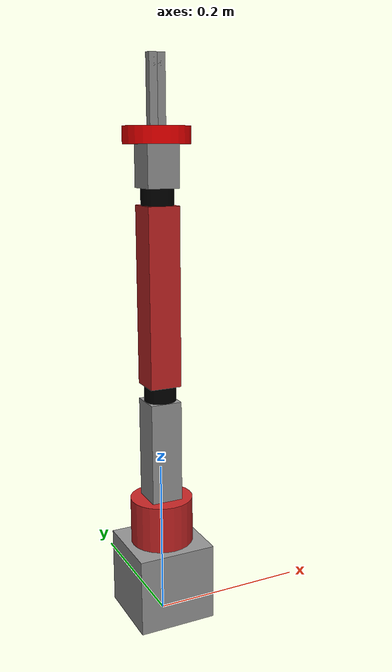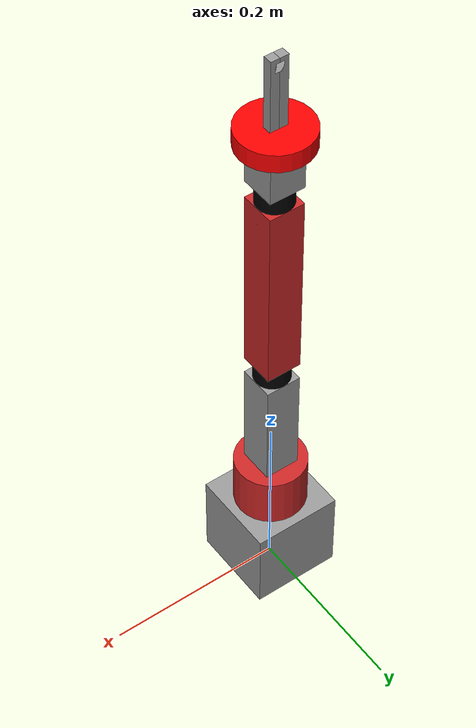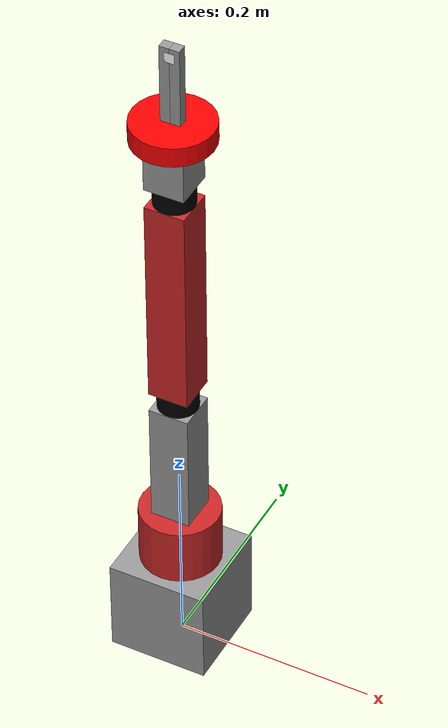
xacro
<?xml version="1.0"?>
<robot name="seven_dof_arm" xmlns:xacro="http://www.ros.org/wiki/xacro">

  <xacro:include filename="$(find seven_dof_robot_description)/urdf/materials.xacro"/>
  <xacro:include filename="$(find seven_dof_robot_description)/urdf/seven_dof_arm.gazebo"/>

  <!-- PROPERTY LIST -->

  <!-- Constans -->
  <xacro:property name="deg_to_rad" value="0.01745329251994329577"/>
  <xacro:property name="M_SCALE" value="0.001 0.001 0.001"/>
  <xacro:property name="M_PI" value="3.14159"/>

  <!-- Shoulder pan link properties -->
  <xacro:property name="shoulder_pan_width" value="0.04"/>
  <xacro:property name="shoulder_pan_len" value="0.08"/>

  <!-- Sholder pitch link properties -->
  <xacro:property name="shoulder_pitch_len" value="0.14"/>
  <xacro:property name="shoulder_pitch_width" value="0.04"/>
  <xacro:property name="shoulder_pitch_height" value="0.04"/>

  <!-- Elbow roll link properties -->
  <xacro:property name="elbow_roll_width" value="0.02"/>
  <xacro:property name="elbow_roll_len" value="0.06"/>

  <!-- Elbow pitch link properties -->
  <xacro:property name="elbow_pitch_len" value="0.22"/>
  <xacro:property name="elbow_pitch_width" value="0.04"/>
  <xacro:property name="elbow_pitch_height" value="0.04"/>

  <!-- Wrist roll link properties -->
  <xacro:property name="wrist_roll_width" value="0.02"/>
  <xacro:property name="wrist_roll_len" value="0.04"/>

  <!-- Wrist pitch link properties -->
  <xacro:property name="wrist_pitch_len" value="0.06"/>
  <xacro:property name="wrist_pitch_width" value="0.04"/>
  <xacro:property name="wrist_pitch_height" value="0.04"/>

  <!-- Gripper roll link properties -->
  <xacro:property name="gripper_roll_width" value="0.04"/>
  <xacro:property name="gripper_roll_len" value="0.02"/>

  <!-- Left gripper -->
  <xacro:property name="left_gripper_len" value="0.08"/>
  <xacro:property name="left_gripper_width" value="0.01"/>
  <xacro:property name="left_gripper_height" value="0.01"/>

  <!-- Right gripper -->
  <xacro:property name="right_gripper_len" value="0.08"/>
  <xacro:property name="right_gripper_width" value="0.01"/>
  <xacro:property name="right_gripper_height" value="0.01"/>

  <!-- Grasp gripper -->
  <xacro:property name="grasp_frame_len" value="0.02"/>
  <xacro:property name="grasp_frame_width" value="0.02"/>
  <xacro:property name="grasp_frame_height" value="0.02"/>

  <!-- XACRO:MACRO -->

  <!-- xacro:macro for inertia matrix -->
  <xacro:macro name="inertia_matrix" params="mass">
    <inertial>
      <mass value="${mass}"/>
    <inertia  ixx="1.0" ixy="0.0" ixz="0.0"
              iyy="0.5" iyz="0.0"
              izz="1.0"/>
    </inertial>
  </xacro:macro>

  <!-- xacro:macro for transmission block -->
  <xacro:macro name="transmission_block" params="trans_name joint_name motor_name">
    <transmision name="${trans_name}">
      <type>transmission_interface/SimpleTransmission</type>
      <joint name="${joint_name}">
        <hardwareInterface>hardware_interface/PositionJointInterface</hardwareInterface>
      </joint>
      <actuator name="${motor_name}">
        <hardwareInterface>hardware_interface/PositionJointInterface</hardwareInterface>
        <mechanicalReduction>1</mechanicalReduction>
      </actuator>
    </transmision>
  </xacro:macro>

    <!-- LINKS AND JOINTS -->

  <!-- WORLD_LINK -->
  <link name="world"/>

  <!-- FIXED_JOINT-->
  <joint name="fixed_joint" type="fixed">
    <parent link="world"/>
    <child link="base_link"/>
    <origin xyz="0.0 0.0 0.0" rpy="0.0 0.0 0.0"/>
  </joint>

  <!-- BOTTOM_LINK -->

  <!-- BOTTOM_BASE _JOINT -->

  <!-- BASE_LINK -->
  <link name="base_link">

    <visual>
      <origin xyz="0 0 0.05" rpy="${M_PI/2} 0.0 0.0"/>
      <geometry>
        <box size="0.1 0.1 0.1"/>
      </geometry>
      <material name="Gray"/>
    </visual>

    <collision>
      <origin xyz="0.0 0.0 0.05" rpy="${M_PI/2} 0.0 0.0"/>
      <geometry>
        <box size="0.1 0.1 0.1"/>
      </geometry>
    </collision>

    <xacro:inertia_matrix mass="1"/>

  </link>

  <!-- SHOULDER_PAN_JOINT -->
  <joint name="shoulder_pan_joint" type="revolute">
    <parent link="base_link"/>
    <child link="shoulder_pan_link"/>
    <limit lower="-2.61799387799" upper="1.98394848567" effort="300" velocity="1"/>
    <origin xyz="0.0 0.0 0.1" rpy="0.0 0.0 0.0"/>
    <axis xyz="0 0 1"/>
    <dynamics damping="50" friction="1"/>
  </joint>

  <!-- SHOULDER_PAN_LINK -->
  <link name="shoulder_pan_link">

    <visual>
      <origin xyz="0.0 0.0 0.02" rpy="0.0 0.0 0.0"/>
      <geometry>
        <cylinder radius="${shoulder_pan_width}" length="${shoulder_pan_len}"/>
      </geometry>
    </visual>

    <collision>
      <origin xyz="0.0 0.0 0.0" rpy="0.0 ${M_PI/2} 0.0"/>
      <geometry>
        <cylinder radius="${shoulder_pan_width}" length="${shoulder_pan_len}"/>
      </geometry>
    </collision>

    <xacro:inertia_matrix mass="1"/>

  </link>

  <!-- SHOULDER_PITCH_JOINT -->
  <joint name="shoulder_pitch_joint" type="revolute">
    <parent link="shoulder_pan_link"/>
    <child link="shoulder_pitch_link"/>
    <limit effort="300" velocity="1" lower="-1.19962513147" upper="1.89994105047"/>
    <origin xyz="0.0 0.0 ${shoulder_pan_len/2}" rpy="0.0 0.0 0.0"/>
  </joint>

  <!-- SHOULDER_PITCH_LINK -->
  <link name="shoulder_pitch_link">

    <visual>
      <origin xyz="0.0 0.0 ${shoulder_pan_len}" rpy="0.0 ${M_PI/2} 0.0"/>
      <geometry>
        <box size="${shoulder_pitch_len} ${shoulder_pitch_width} ${shoulder_pitch_height}"/>
      </geometry>
      <material name="Gray"/>
    </visual>

    <collision>
      <origin xyz="0.0 0.0 ${shoulder_pan_len}" rpy="0.0 ${M_PI/2} 0.0"/>
      <geometry>
        <box size="${shoulder_pitch_len} ${shoulder_pitch_width} ${shoulder_pitch_height}"/>
      </geometry>
    </collision>

    <xacro:inertia_matrix mass="1"/>

  </link>

  <!-- ELBOW_ROLL_JOINT -->
  <joint name="elbow_roll_joint" type="revolute">
    <parent link="shoulder_pitch_link"/>
    <child link="elbow_roll_link"/>
    <limit effort="300" velocity="1" lower="-2.61799387799" upper="0.705631162427" />
    <origin xyz="0.0 0.0 ${shoulder_pitch_len}" rpy="0.0 0.0 0.0"/>
    <axis xyz="0.0 0.0 1.0"/>
    <dynamics damping="50" friction="1"/>
  </joint>

  <!-- ELBOW_ROLL_LINK -->
  <link name="elbow_roll_link">

    <visual>
      <origin xyz="0.0 0.0 ${elbow_roll_len/2}" rpy="0.0 0.0 0.0"/>
      <geometry>
        <cylinder radius="${elbow_roll_width}" length="${elbow_roll_len}"/>
      </geometry>
      <material name="Black"/>
    </visual>

    <collision>
      <origin xyz="0.0 0.0 0.0" rpy="0.0 0.0 0.0"/>
      <geometry>
        <cylinder radius="${elbow_roll_width}" length="${elbow_roll_len}"/>
      </geometry>
    </collision>

    <xacro:inertia_matrix mass="1"/>

  </link>

  <!-- ELBOW_PITCH_JOINT -->
  <joint name="elbow_pitch_joint" type="revolute">
    <parent link="elbow_roll_link"/>
    <child link="elbow_pitch_link"/>
    <limit effort="300" velocity="1" lower="-1.5953400194" upper="1.93281579274" />
    <origin xyz="0.0 0.0 ${elbow_roll_len/2}" rpy="0.0 0.0 0.0"/>
    <dynamics damping="50" friction="1"/>
  </joint>

  <!-- ELBOW_PITCH_LINK -->
  <link name="elbow_pitch_link">

    <visual>
      <origin xyz="0.0 0.0 ${elbow_pitch_len/2}" rpy="0.0 ${M_PI/2} 0.0"/>
      <geometry>
        <box size="${elbow_pitch_len} ${elbow_pitch_width} ${elbow_pitch_height}"/>
      </geometry>
    </visual>

    <collision>
      <origin xyz="0.0 0.0 ${elbow_pitch_len/2}" rpy="0.0 ${M_PI/2} 0.0"/>
      <geometry>
        <box size="${elbow_pitch_len} ${elbow_pitch_width} ${elbow_pitch_height}"/>
      </geometry>
      <material name="Red"/>
    </collision>

    <xacro:inertia_matrix mass="1"/>

  </link>

  <!-- WRIST_ROLL_JOINT -->
  <joint name="wrist_roll_joint" type="revolute">
    <parent link="elbow_pitch_link"/>
    <child link="wrist_roll_link"/>
    <limit effort="300" velocity="1" lower="-2.61799387799" upper="2.6128806087" />
    <origin xyz="0.0 0.0 ${elbow_pitch_len}" rpy="0.0 0.0 0.0"/>
    <axis xyz="0.0 0.0 1"/>
    <dynamics damping="50" friction="1"/>
  </joint>

  <!-- WRIST_ROLL_LINK -->
  <link name="wrist_roll_link">

    <visual>
      <origin xyz="0.0 0.0 0" rpy="0.0 0.0 0.0"/>
      <geometry>
        <cylinder radius="${wrist_roll_width}" length="${wrist_roll_len}"/>
      </geometry>
      <material name="Black"/>
    </visual>

    <collision>
      <origin xyz="0.0 0.0 0" rpy="0.0 0.0 0.0"/>
      <geometry>
        <cylinder radius="${wrist_roll_width}" length="${wrist_roll_len}"/>
      </geometry>
    </collision>

    <xacro:inertia_matrix mass="1"/>
  </link>

  <!-- WRIST_PITCH_JOINT -->
  <joint name="wrist_pitch_joint" type="revolute">
    <parent link="wrist_roll_link"/>
    <child link="wrist_pitch_link"/>
    <origin xyz="0.0 0.0 ${wrist_roll_len/2}" rpy="0.0 0.0 0.0"/>
    <limit effort="300" velocity="1" lower="-1.5953400194" upper="1.98394848567" />
    <dynamics damping="50" friction="1"/>
  </joint>

  <!-- WRIST_PITCH_LINK -->
  <link name="wrist_pitch_link">

    <visual>
      <origin xyz="0.0 0.0 ${wrist_pitch_len/2}" rpy="0.0 ${M_PI/2} 0.0"/>
      <geometry>
        <box size="${wrist_pitch_len} ${wrist_pitch_width} ${wrist_pitch_height}"/>
      </geometry>
      <material name="Gray"/>
    </visual>

    <collision>
      <origin xyz="0.0 0.0 ${wrist_pitch_len/2}" rpy="0.0 ${M_PI/2} 0.0"/>
      <geometry>
        <box size="${wrist_pitch_len} ${wrist_pitch_width} ${wrist_pitch_height}"/>
      </geometry>
    </collision>

    <xacro:inertia_matrix mass="1"/>

  </link>

  <!-- GRIPPER_ROLL_JOINT -->
  <joint name="gripper_roll_joint" type="revolute">
    <parent link="wrist_pitch_link"/>
    <child link="gripper_roll_link"/>
    <origin xyz="0.0 0.0 ${wrist_pitch_len}" rpy="0.0 0.0 0.0"/>
    <axis xyz="0.0 0.0 1.0"/>
    <limit effort="300" velocity="1" lower="-3.14" upper="3.14" />
    <dynamics damping="50" friction="1"/>
  </joint>

  <!-- GRIPPER_ROLL_LINK -->
  <link name="gripper_roll_link">

    <visual>
      <origin xyz="0.0 0.0 0.0" rpy="0.0 0.0 0.0"/>
      <geometry>
        <cylinder radius="${gripper_roll_width}" length="${gripper_roll_len}"/>
      </geometry>
      <material name="Red"/>
    </visual>

    <collision>
      <origin xyz="0.0 0.0 0.0" rpy="0.0 0.0 0.0"/>
      <geometry>
        <cylinder radius="${gripper_roll_width}" length="${gripper_roll_len}"/>
      </geometry>
    </collision>

    <xacro:inertia_matrix mass="1"/>

  </link>

  <!-- Finger_joint_1 -->
  <joint name="finger_joint1" type="prismatic">
    <parent link="gripper_roll_link"/>
    <child link="gripper_finger_link1"/>
    <limit effort="100" lower="0" upper="0.03" velocity="1.0"/>
    <origin xyz="0.0 0.0 ${wrist_roll_len/4}" rpy="0.0 0.0 0.0"/>
    <axis xyz="1 0.0 0.0"/>
    <dynamics damping="50" friction="1"/>
  </joint>

  <!-- LEFT_GRIPPER_LINK -->
  <link name="gripper_finger_link1">

    <visual>
      <origin xyz="${left_gripper_width/2} 0.0 ${left_gripper_len/2}" rpy="0.0 ${M_PI/2} 0.0"/>
      <geometry>
        <box size="${left_gripper_len} ${left_gripper_width} ${left_gripper_height}"/>
      </geometry>
      <material name="Gray"/>
    </visual>

    <collision>
      <origin xyz="0.0 0.0 0.0" rpy="0.0 0.0 0.0"/>
      <geometry>
        <box size="${left_gripper_len} ${left_gripper_width} ${left_gripper_height}"/>
      </geometry>
    </collision>

    <inertial>
      <mass value="0.05"/>
      <inertia  ixx="0.0001" ixy="0.0" ixz="0.0"
                iyy="0.0001" iyz="0.0"
                izz="0.0001"/>
    </inertial>

  </link>

  <!-- Finger_joint_2 -->
  <joint name="finger_joint2" type="prismatic">
    <parent link="gripper_roll_link"/>
    <child link="gripper_finger_link2"/>
    <limit effort="100" lower="0" upper="0.03" velocity="1.0"/>
    <origin xyz="0.0 0.0 ${wrist_roll_len/4}" rpy="0.0 0.0 0.0"/>
    <axis xyz="-1 0.0 0.0"/>
    <dynamics damping="50" friction="1"/>
  </joint>

    <!-- RIGHT_GRIPPER_LINK -->
  <link name="gripper_finger_link2">

    <visual>
      <origin xyz="${-right_gripper_width/2} 0.0 ${right_gripper_len/2}" rpy="0.0 ${M_PI/2} 0.0"/>
      <geometry>
        <box size="${right_gripper_len} ${right_gripper_width} ${right_gripper_height}"/>
      </geometry>
      <material name="Gray"/>
    </visual>

    <collision>
      <origin xyz="0.0 0.0 0.0" rpy="0.0 0.0 0.0"/>
      <geometry>
        <box size="${right_gripper_len} ${right_gripper_width} ${right_gripper_height}"/>
      </geometry>
    </collision>

    <inertial>
      <mass value="0.05"/>
      <inertia  ixx="0.0001" ixy="0.0" ixz="0.0"
                iyy="0.0001" iyz="0.0"
                izz="0.0001"/>
    </inertial>

  </link>

  <!-- Grasping frame -->
  <link name="grasping_frame">

    <visual>
      <origin xyz="0.0 0.0 0.0" rpy="0.0 0.0 0.0"/>
      <geometry>
        <box size="0.01 0.01 0.01"/>
      </geometry>
      <material name="White"/>
    </visual>

    <inertial>
      <origin xyz="0 0 0" rpy="0 0 0"/>
      <mass value="0.0001"/>
      <cuboid_inertia mass="0.0001" x="0.001" y="0.001" z="0.001"/>
      <inertia  ixx="1.0" ixy="0.0"  ixz="0.0"  iyy="100.0"  iyz="0.0"  izz="1.0" />
    </inertial>

  </link>

  <joint name="grasping_frame_joint" type="fixed">
    <parent link="gripper_roll_link"/>
    <child link="grasping_frame"/>
    <origin xyz="0.0 0.0 0.08" rpy="0.0 0.0 0.0"/>
  </joint>

  <!-- TRANSMISSIONS -->

  <xacro:transmission_block trans_name="trans1" joint_name="shoulder_pan_joint" motor_name="motor1"/>
  <xacro:transmission_block trans_name="trans2" joint_name="shoulder_pitch_joint" motor_name="motor2"/>
  <xacro:transmission_block trans_name="trans3" joint_name="elbow_roll_joint" motor_name="motor3"/>
  <xacro:transmission_block trans_name="trans4" joint_name="elbow_pitch_joint" motor_name="motor4"/>
  <xacro:transmission_block trans_name="trans5" joint_name="wrist_roll_joint" motor_name="motor5"/>
  <xacro:transmission_block trans_name="trans6" joint_name="wrist_pitch_joint" motor_name="motor6"/>
  <xacro:transmission_block trans_name="trans7" joint_name="gripper_roll_joint" motor_name="motor7"/>
  <xacro:transmission_block trans_name="trans7" joint_name="finger_joint1" motor_name="motor7"/>
  <xacro:transmission_block trans_name="trans7" joint_name="finger_joint2" motor_name="motor7"/>

</robot>

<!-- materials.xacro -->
<robot>

  <!-- Include materials -->
  <material name="Black">
    <color rgba="0.0 0.0 0.0 1.0"/>
  </material>

  <material name="Red">
    <color rgba="1.0 0.0 0.0 1.0"/>
  </material>

  <material name="White">
    <color rgba="1.0 1.0 1.0 1.0"/>
  </material>

  <material name="Blue">
    <color rgba="0.0 0.0 1.0 1.0"/>
  </material>

</robot>
